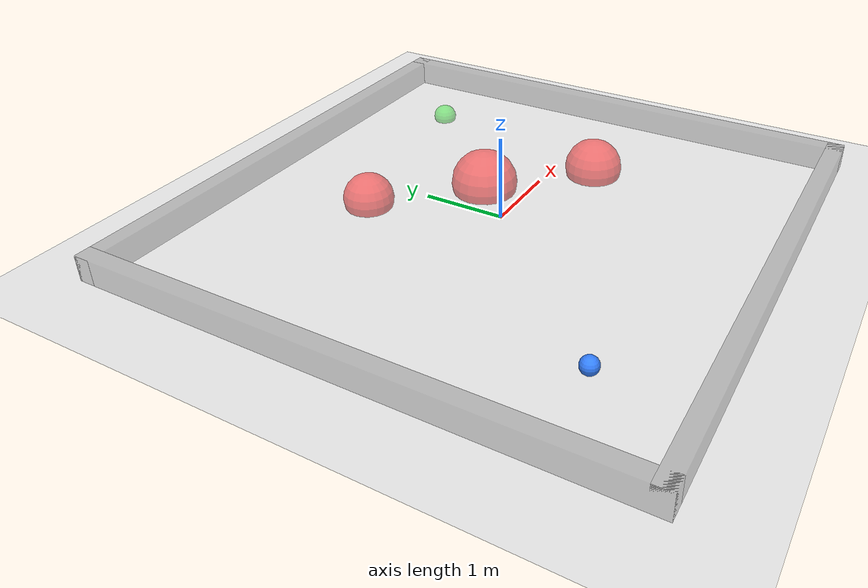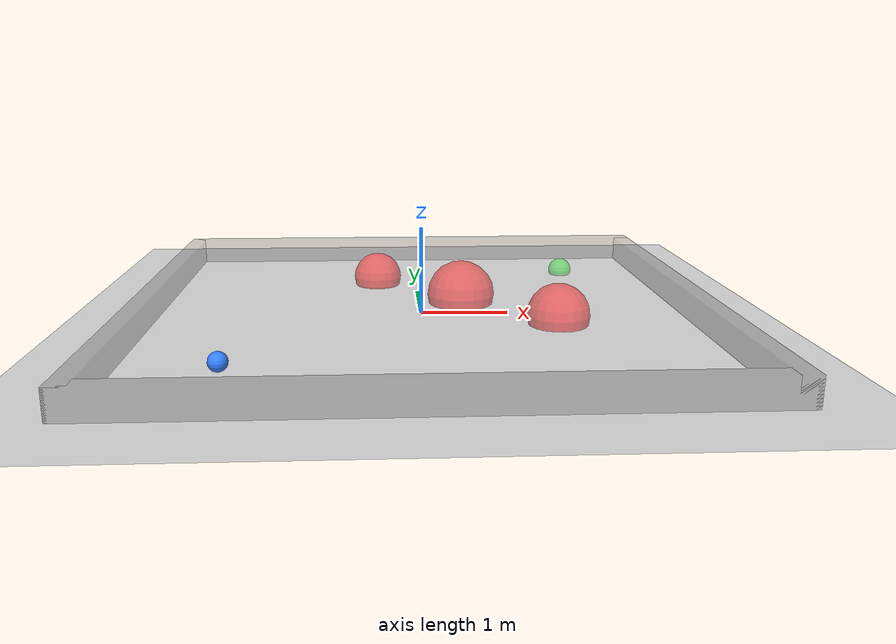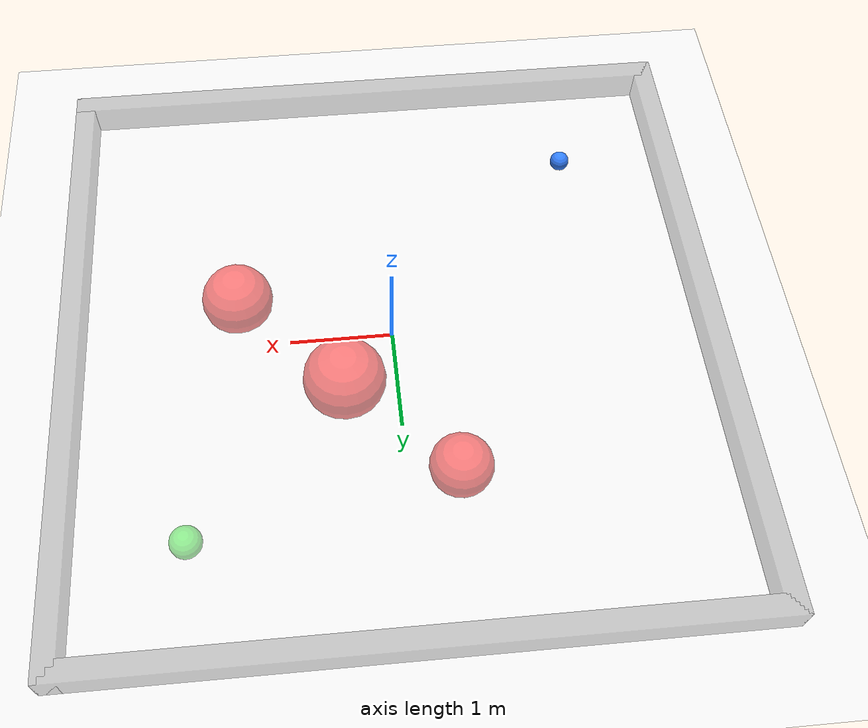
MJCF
<mujoco model="point_mass_arena">
  <option timestep="0.02" gravity="0 0 0"/>

  <worldbody>
    <light diffuse="0.8 0.8 0.8" pos="0 0 4" dir="0 0 -1"/>
    <geom name="floor" type="plane" size="4 4 0.1" rgba="0.9 0.9 0.9 1"/>

    <!-- Arena boundary walls (invisible collision) -->
    <geom name="wall_xp" type="box" pos="3.1 0 0.1" size="0.1 3.2 0.2" rgba="0.3 0.3 0.3 0.3"/>
    <geom name="wall_xn" type="box" pos="-3.1 0 0.1" size="0.1 3.2 0.2" rgba="0.3 0.3 0.3 0.3"/>
    <geom name="wall_yp" type="box" pos="0 3.1 0.1" size="3.2 0.1 0.2" rgba="0.3 0.3 0.3 0.3"/>
    <geom name="wall_yn" type="box" pos="0 -3.1 0.1" size="3.2 0.1 0.2" rgba="0.3 0.3 0.3 0.3"/>

    <!-- Point-mass agent -->
    <body name="agent" pos="-2 -2 0.1">
      <joint name="agent_x" type="slide" axis="1 0 0" damping="0.5"/>
      <joint name="agent_y" type="slide" axis="0 1 0" damping="0.5"/>
      <geom name="agent_geom" type="sphere" size="0.1" mass="1.0" rgba="0.2 0.5 1.0 1"/>
    </body>

    <!-- Obstacles -->
    <body name="obstacle_0" pos="0.5 0.5 0.1">
      <geom name="obs_0" type="sphere" size="0.4" rgba="1 0.2 0.2 0.6" contype="1" conaffinity="1"/>
    </body>
    <body name="obstacle_1" pos="-0.5 1.5 0.1">
      <geom name="obs_1" type="sphere" size="0.3" rgba="1 0.2 0.2 0.6" contype="1" conaffinity="1"/>
    </body>
    <body name="obstacle_2" pos="1.5 -0.5 0.1">
      <geom name="obs_2" type="sphere" size="0.35" rgba="1 0.2 0.2 0.6" contype="1" conaffinity="1"/>
    </body>

    <!-- Goal marker (visual only, no collision) -->
    <body name="goal" pos="2 2 0.05">
      <geom name="goal_geom" type="sphere" size="0.15" rgba="0.2 0.9 0.2 0.5" contype="0" conaffinity="0"/>
    </body>
  </worldbody>

  <actuator>
    <motor joint="agent_x" gear="2" ctrllimited="true" ctrlrange="-1 1"/>
    <motor joint="agent_y" gear="2" ctrllimited="true" ctrlrange="-1 1"/>
  </actuator>
</mujoco>
